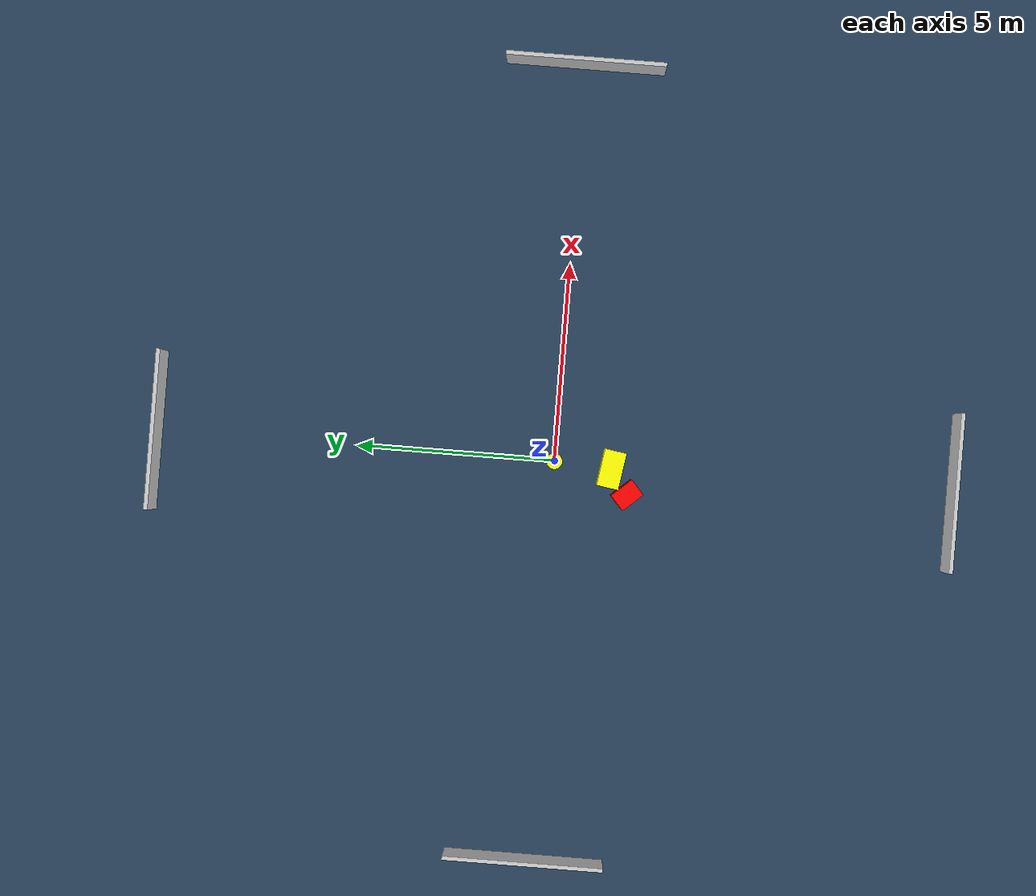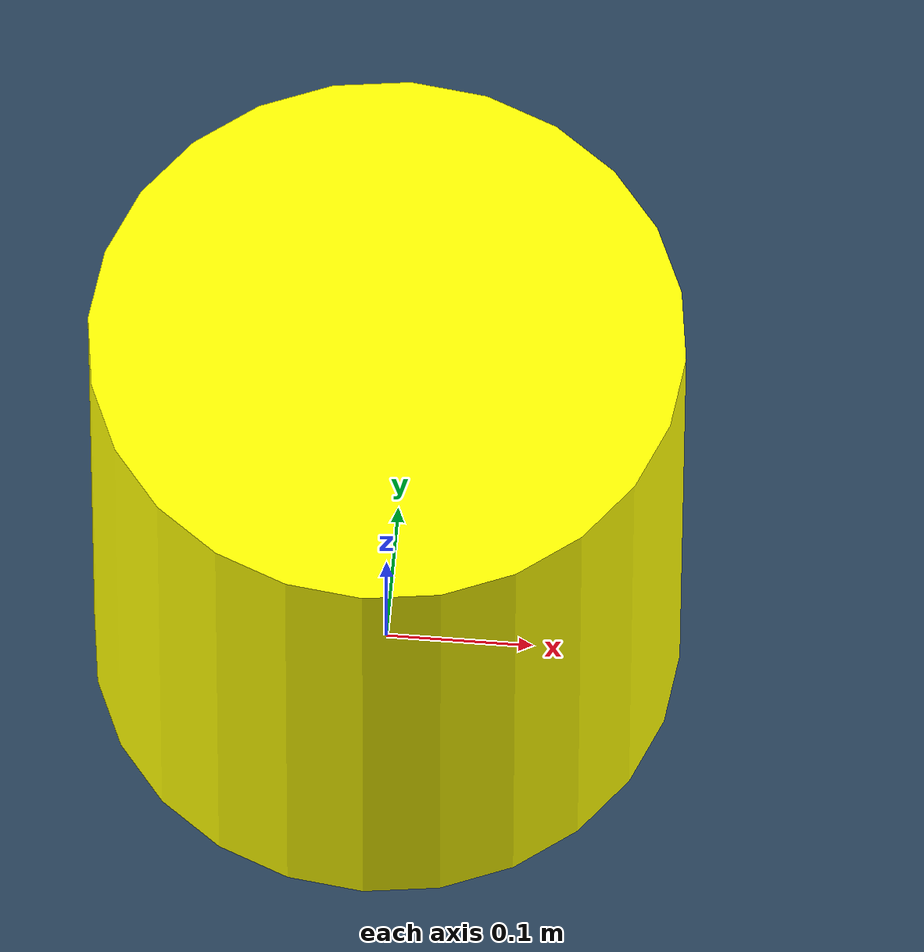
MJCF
<?xml version="1.0" ?>
<mujoco model="generated_environment">
  <option timestep="0.01" integrator="RK4" cone="elliptic"/>
  <default>
    <geom density="1"/>
  </default>
  <asset>
    <texture builtin="gradient" height="3072" name="skybox" rgb1="0.3 0.5 0.7" rgb2="0 0 0" type="skybox" width="512"/>
    <texture builtin="checker" height="300" name="groundplane" rgb1="0.2 0.3 0.4" rgb2="0.1 0.2 0.3" type="2d" width="300"/>
    <material name="groundplane" reflectance="0.2" texrepeat="5 5" texture="groundplane"/>
  </asset>
  <worldbody>
    <light dir="0 0 -1" directional="true" pos="0 0 1.5"/>
    <geom condim="3" friction="0.5 0.005 0.001" material="groundplane" name="floor" pos="0 0 0" size="0 0 0.05" type="plane"/>
    <body name="walls">
      <geom name="wall_1" condim="4" pos="-10.0 0.0 0.3" rgba="0.800000011920929 0.800000011920929 0.800000011920929 1.0" size="0.05 2.0 0.3" type="box"/>
      <geom name="wall_2" condim="4" pos="10.0 0.0 0.3" rgba="0.800000011920929 0.800000011920929 0.800000011920929 1.0" size="0.05 2.0 0.3" type="box"/>
      <geom name="wall_3" condim="4" pos="0.0 -10.0 0.3" rgba="0.800000011920929 0.800000011920929 0.800000011920929 1.0" size="2.0 0.05 0.3" type="box"/>
      <geom name="wall_4" condim="4" pos="0.0 10.0 0.3" rgba="0.800000011920929 0.800000011920929 0.800000011920929 1.0" size="2.0 0.05 0.3" type="box"/>
    </body>
    <body name="robot">
      <joint name="joint_x" type="slide" pos="0 0 0" axis="1 0 0"/>
      <joint name="joint_y" type="slide" pos="0 0 0" axis="0 1 0"/>
      <geom name="robot" type="cylinder" pos="0.0 0.0 0.2" size="0.2 0.2 0.0" mass="5.0" friction="1.0 0.005 0.0001" condim="4" rgba="1.0 1.0 0.0 1.0"/>
    </body>
    <body name="obstacle_1_movable">
      <geom name="obstacle_1_movable" condim="4" pos="-0.08553189935804663 -1.4295058891200139 0.3" euler="0 0 261.1984979611668" friction="0.0 0.005 0.001" rgba="1.0 1.0 0.0 1.0" size="0.274353615981802 0.46527268050898857 0.3" type="box" mass="0.1"/>
      <joint type="free"/>
    </body>
    <body name="obstacle_2_static">
      <geom name="obstacle_2_static" condim="4" pos="-0.6950106587903752 -1.8647693449131708 0.3" euler="0 0 41.779330430575186" friction="0.0 0.005 0.001" rgba="1.0 0.0 0.0 1.0" size="0.23614772954724603 0.3246368042158756 0.3" type="box"/>
    </body>
  </worldbody>
  <actuator>
    <motor name="actuator_x" joint="joint_x" gear="1" ctrlrange="-1 1"/>
    <motor name="actuator_y" joint="joint_y" gear="1" ctrlrange="-1 1"/>
  </actuator>
</mujoco>
